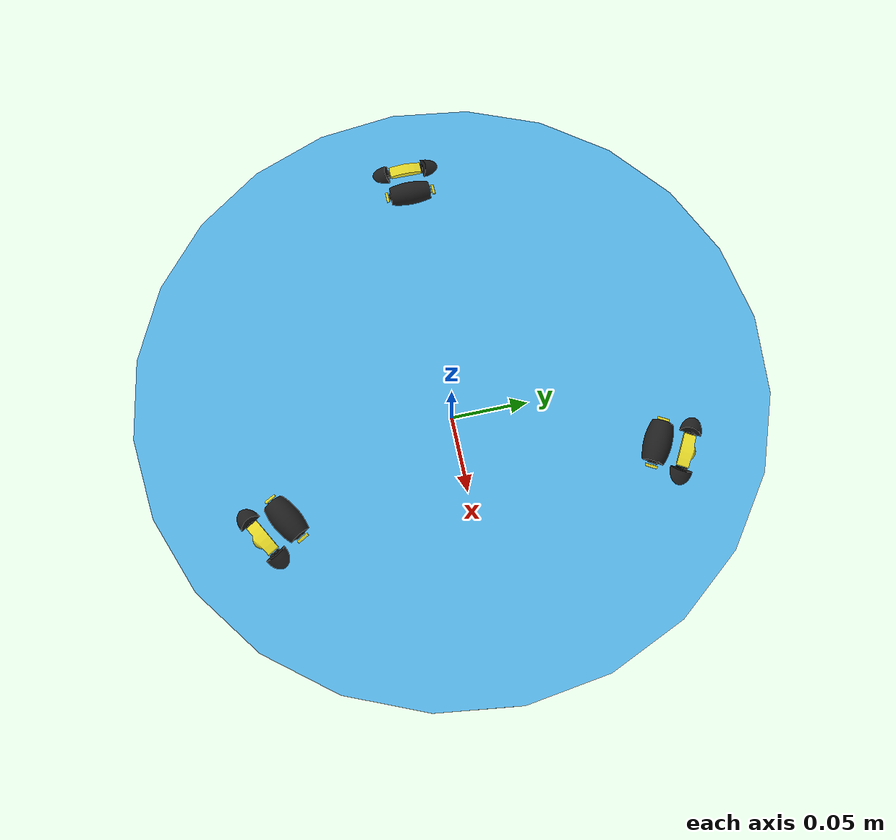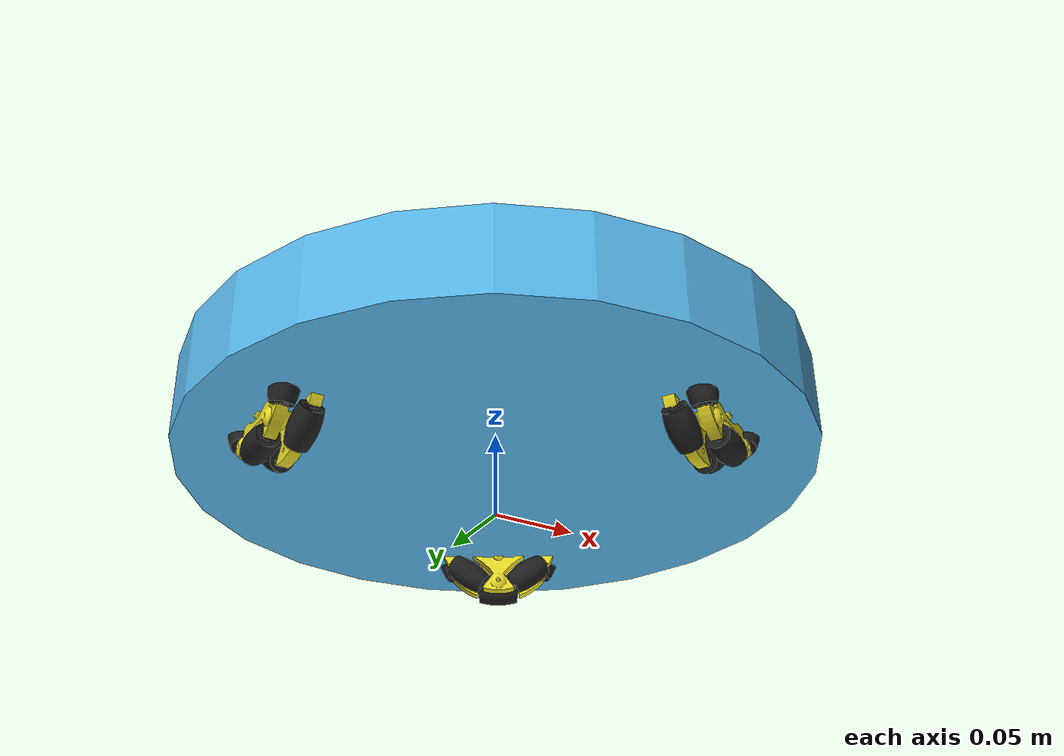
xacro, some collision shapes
<?xml version="1.0"?>
<robot xmlns:xacro="http://www.ros.org/wiki/xacro" name="robotino">
    <xacro:include filename="$(find robotino_roller)/description/urdf/properties.xacro"/>
    <xacro:include filename="$(find robotino_roller)/description/urdf/utils.xacro"/>
    <xacro:include filename="$(find robotino_roller)/description/urdf/wheel.xacro"/>

    <!-- Used for fixing robot to the world in Gazebo -->
    <link name="base_link">
    </link>

    <link name="chassis_link">
        <xacro:inertial_cylinder mass="${BASE_MASS}" radius="${BASE_RADIUS}" height="${BASE_HEIGHT}">
            <origin xyz="0 0 0"/>
        </xacro:inertial_cylinder>
        <visual>
            <origin xyz="0.01 0 0" rpy="0 0 ${M_PI/2}"/>
            <geometry>
                <mesh filename="package://robotino_roller/description/mesh/robotino_base.dae" scale="${M_SCALE} ${M_SCALE} ${M_SCALE}"/>
            </geometry>
        </visual>
        <collision>
            <origin xyz="0 0 ${BASE_HEIGHT}" rpy="0 0 0" />
            <geometry>
                <cylinder radius="${BASE_RADIUS}" length="${BASE_HEIGHT}"/>
            </geometry>
        </collision>
    </link>
    <joint name="chassis_joint" type="fixed">
        <parent link="base_link"/>
        <child link="chassis_link"/>
        <origin xyz="0 0 0"/>
    </joint>
    <gazebo reference="chassis">
        <material>Gazebo/White</material>
        <turnGravityOff>false</turnGravityOff>
    </gazebo>

    <xacro:wheel_macro name="wheel0" parent="chassis_link">
        <origin xyz="0.065 0.11 0.04" rpy="${M_PI/2} 0 ${-M_PI/6}"/>
        <axis xyz="0 0 1"/>
    </xacro:wheel_macro>

    <xacro:wheel_macro name="wheel1" parent="chassis_link">
        <origin xyz="-0.13 0 0.04" rpy="${M_PI/2} 0 ${M_PI/2}"/>
        <axis xyz="0 0 1"/>
    </xacro:wheel_macro>

    <xacro:wheel_macro name="wheel2" parent="chassis_link">
        <origin xyz="0.065 -0.11 0.04" rpy="${M_PI/2} 0 ${M_PI*(7/6)}"/>
        <axis xyz="0 0 1"/>
    </xacro:wheel_macro>

    <gazebo>
        <plugin filename="libgazebo_ros_control.so" name="gazebo_ros_control"/>
    </gazebo>
</robot>

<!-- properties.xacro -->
<robot xmlns:xacro="http://www.ros.org/wiki/xacro">

  <!-- ***** COMMON ***** -->
  <xacro:property name="M_PI" value="3.14159"/>

  <!-- ***** BASE ***** -->
  <xacro:property name="M_SCALE" value="0.01"/>
  <xacro:property name="BASE_RADIUS" value="0.18"/>
  <xacro:property name="BASE_HEIGHT" value="0.05"/>
  <xacro:property name="BASE_MASS" value="20"/>

  <!-- ***** WHEEL ***** -->
  <xacro:property name="WHEEL_RADIUS" value="0.04"/>
  <xacro:property name="WHEEL_HEIGHT" value="0.04"/>
  <xacro:property name="WHEEL_MASS" value="1.26"/>
  <xacro:property name="ROLLER_HEIGHT" value="0.01899975"/>
  <xacro:property name="ROLLER_RADIUS" value="0.006233225"/>
  <xacro:property name="ROLLER_MASS" value="0.1"/>
  <xacro:property name="WHEEL_SCALE" value="1.33297475178"/>
</robot>

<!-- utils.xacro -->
<robot xmlns:xacro="http://www.ros.org/wiki/xacro">
    <xacro:macro name="inertial_cylinder" params="mass height radius *origin">
        <inertial>
            <xacro:insert_block name="origin"/>
            <mass value="${mass}" />
            <inertia ixx="${(1/12) * mass * (3*radius*radius + height*height)}" ixy="0.0" ixz="0.0"
                    iyy="${(1/12) * mass * (3*radius*radius + height*height)}" iyz="0.0"
                    izz="${(1/2) * mass * (radius*radius)}" />
        </inertial>
    </xacro:macro>
</robot>

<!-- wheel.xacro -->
<robot xmlns:xacro="http://www.ros.org/wiki/xacro">

	<xacro:macro name="wheel_macro" params="parent name *origin *axis">

		<link name="${name}_link">
			<xacro:inertial_cylinder mass="${WHEEL_MASS}" height="${WHEEL_HEIGHT}" radius="${WHEEL_RADIUS}">
				<origin xyz="0 0 0"/>
			</xacro:inertial_cylinder>
			<visual>
				<geometry>
					<mesh filename="package://robotino_roller/description/mesh/rim01.stl"/>
				</geometry>
			</visual>
			<collision>
				<geometry>
					<mesh filename="package://robotino_roller/description/mesh/rim01.stl"/>
				</geometry>
			</collision>
		</link>

		<joint name="${name}_joint" type="continuous">
			<parent link="${parent}" />
			<child link="${name}_link" />
			<xacro:insert_block name="origin" />
			<xacro:insert_block name="axis" />
		</joint>

		<gazebo reference="${name}_link">
			<material>Gazebo/Yellow</material>
			<turnGravityOff>false</turnGravityOff>
		</gazebo>

		<!--- Rollers -->
		<xacro:roller_macro parent="${name}" name="upfront" xyz="${[0, 0.02406, 0.0055]}" rpy="-1.570796326794896 0 1.570796326794896" />
		<xacro:roller_macro parent="${name}" name="rightupfront" xyz="${[0.02288, 0.00743, 0.0055]}" rpy="-1.570796326794896 0 -2.82743" />
		<xacro:roller_macro parent="${name}" name="leftupfront" xyz="${[-0.02288,  0.00743, 0.0055]}" rpy="-1.570796326794896 0 2.82743" />
		<xacro:roller_macro parent="${name}" name="rightdownfront" xyz="${[0.01414, -0.01947, 0.0055]}" rpy="-1.570796326794896 0 -0.959931" />
		<xacro:roller_macro parent="${name}" name="lefttdownfront" xyz="${[-0.01414, -0.01947, 0.0055]}" rpy="-1.570796326794896 0 0.959931" />

		<!---Back part of the wheel -->
		<xacro:roller_macro parent="${name}" name="upback" xyz="${[0, -0.02406, -0.0064]}" rpy="-1.570796326794896 0 1.570796326794896" />
		<xacro:roller_macro parent="${name}" name="rightupback" xyz="${[-0.02288, -0.00743, -0.0064]}" rpy="-1.570796326794896 0 -2.82743" />
		<xacro:roller_macro parent="${name}" name="leftupback" xyz="${[0.02288, -0.00743, -0.0064]}" rpy="-1.570796326794896 0 2.82743" />
		<xacro:roller_macro parent="${name}" name="rightdownback" xyz="${[-0.01414, 0.01947, -0.0064]}" rpy="-1.570796326794896 0 -0.959931" />
		<xacro:roller_macro parent="${name}" name="lefttdownback" xyz="${[0.01414, 0.01947, -0.0064]}" rpy="-1.570796326794896 0 0.959931" />

		<transmission name="${name}_transmission">
			<type>transmission_interface/SimpleTransmission</type>
			<joint name="${name}_joint">
				<hardwareInterface>hardware_interface/EffortJointInterface</hardwareInterface>
			</joint>
			<actuator name="${name}_motor">
				<hardwareInterface>hardware_interface/EffortJointInterface</hardwareInterface>
				<mechanicalReduction>1</mechanicalReduction>
			</actuator>
		</transmission>

	</xacro:macro>

	<xacro:macro name="roller_macro" params="parent name xyz rpy">

		<link name="roller_${name}_${parent}_link">
			<xacro:inertial_cylinder mass="${ROLLER_MASS}" height="${ROLLER_HEIGHT*WHEEL_SCALE}" radius="${ROLLER_RADIUS*WHEEL_SCALE}">
				<origin xyz="0 0 0"/>
			</xacro:inertial_cylinder>
			<visual>
				<geometry>
					<mesh filename="package://robotino_roller/description/mesh/roller01.stl"/>
				</geometry>
			</visual>
			<collision>
				<geometry>
					<mesh filename="package://robotino_roller/description/mesh/roller01.stl"/>
				</geometry>
			</collision>
		</link>

		<gazebo reference="roller_${name}_${parent}_link">
			<material>Gazebo/Black</material>
			<mu1 value="2.5" />
			<mu2 value="2.5" />
			<kp value="5000" />
			<kd value="10" />
		</gazebo>

		<joint name="roller_${name}_${parent}_joint" type="continuous">
			<parent link="${parent}_link"/>
			<child link="roller_${name}_${parent}_link"/>
			<axis xyz="0 0 1"/>
			<origin xyz="${xyz[0]*WHEEL_SCALE} ${xyz[1]*WHEEL_SCALE} ${xyz[2]*WHEEL_SCALE}" rpy="${rpy}"/>
		</joint>
	</xacro:macro>

</robot>
